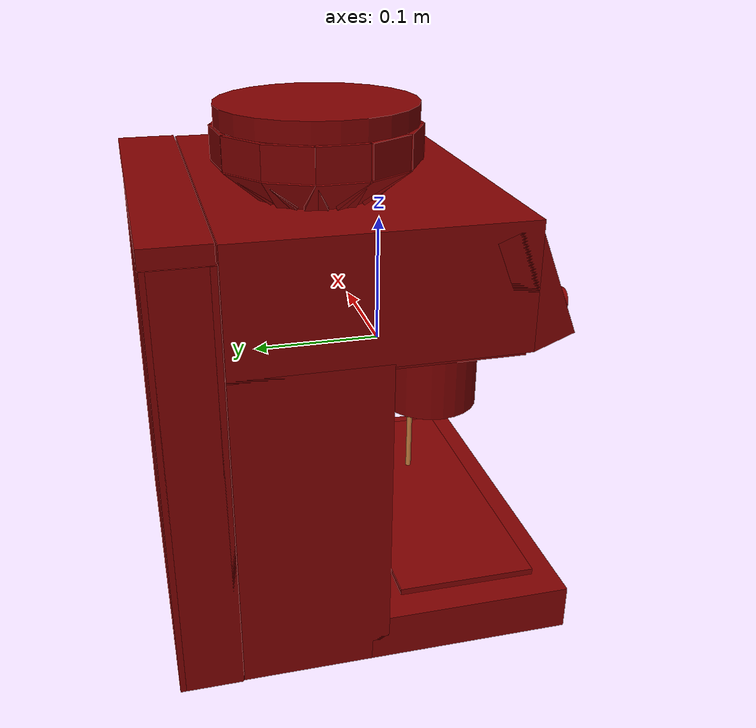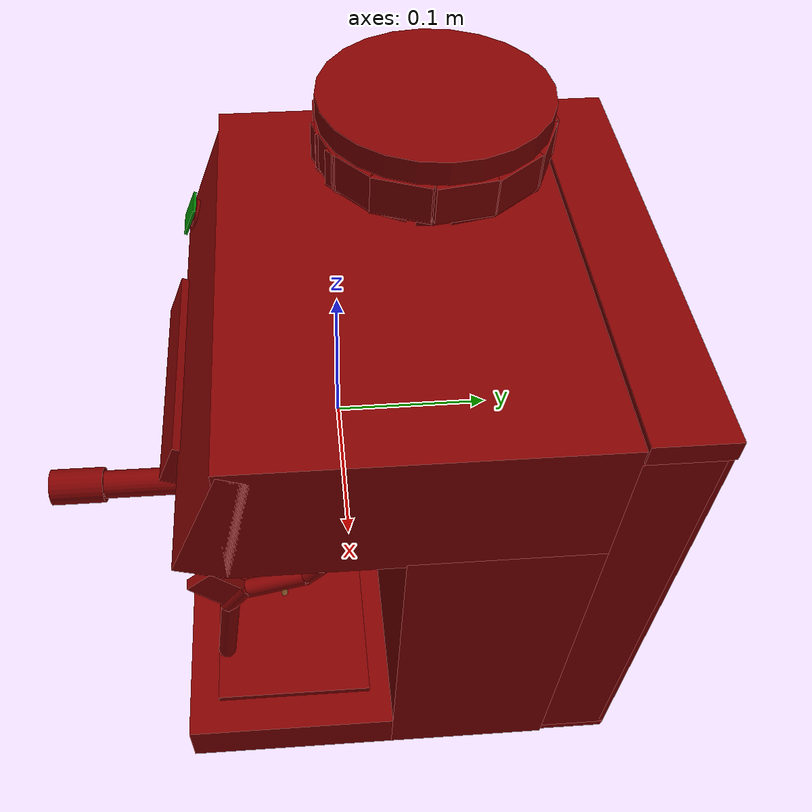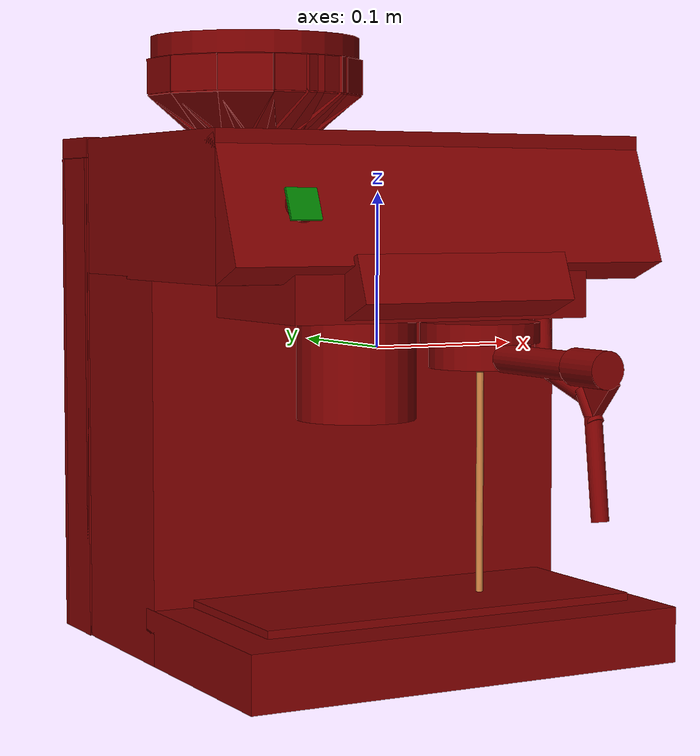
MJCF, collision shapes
<?xml version='1.0' encoding='UTF-8'?>
<mujoco model="model">
  <compiler angle="radian"/>
  <asset>
    <mesh file="visuals/Body001.obj" name="Body001_vis"/>
    <mesh file="visuals/Button001.obj" name="Button001_vis"/>
    <mesh file="visuals/Container001_Clear.obj" name="Container001_Clear_vis"/>
    <mesh file="visuals/Container002_Clear.obj" name="Container002_Clear_vis"/>
    <mesh file="visuals/Lever001.obj" name="Lever001_vis"/>
    <mesh file="visuals/Lever002.obj" name="Lever002_vis"/>
    <mesh file="visuals/Lid001.obj" name="Lid001_vis"/>
    <mesh file="visuals/Lid002.obj" name="Lid002_vis"/>
    <mesh file="visuals/Lid003.obj" name="Lid003_vis"/>
    <texture file="visuals/T_BC001.png" name="Body001_material" type="2d"/>
    <material name="Body001_material" rgba="1 1 1 1.0" texture="Body001_material" shininess="0.141421377658844" specular="0.3103448502657381"/>
    <texture file="visuals/T_BC001.png" name="Button001_material" type="2d"/>
    <material name="Button001_material" rgba="1 1 1 1.0" texture="Button001_material" shininess="0.141421377658844" specular="0.3103448502657381"/>
    <texture file="visuals/T_BC001.png" name="Container001_Clear_material" type="2d"/>
    <material name="Container001_Clear_material" rgba="1 1 1 0.15544039011001587" texture="Container001_Clear_material" shininess="0.141421377658844" specular="0.3103448502657381"/>
    <texture file="visuals/T_BC001.png" name="Lid003_material" type="2d"/>
    <material name="Lid003_material" rgba="1 1 1 1.0" texture="Lid003_material" shininess="0.141421377658844" specular="0.3103448502657381"/>
    <texture file="visuals/T_BC001.png" name="Container002_Clear_material" type="2d"/>
    <material name="Container002_Clear_material" rgba="1 1 1 0.15544039011001587" texture="Container002_Clear_material" shininess="0.141421377658844" specular="0.3103448502657381"/>
    <texture file="visuals/T_BC001.png" name="Lid002_material" type="2d"/>
    <material name="Lid002_material" rgba="1 1 1 1.0" texture="Lid002_material" shininess="0.141421377658844" specular="0.3103448502657381"/>
    <texture file="visuals/T_BC001.png" name="Lever001_material" type="2d"/>
    <material name="Lever001_material" rgba="1 1 1 1.0" texture="Lever001_material" shininess="0.141421377658844" specular="0.3103448502657381"/>
    <texture file="visuals/T_BC001.png" name="Lever002_material" type="2d"/>
    <material name="Lever002_material" rgba="1 1 1 1.0" texture="Lever002_material" shininess="0.141421377658844" specular="0.3103448502657381"/>
    <texture file="visuals/T_BC001.png" name="Lid001_material" type="2d"/>
    <material name="Lid001_material" rgba="1 1 1 1.0" texture="Lid001_material" shininess="0.141421377658844" specular="0.3103448502657381"/>
  </asset>
  <default>
    <default class="visual">
      <geom conaffinity="0" contype="0" group="1" type="mesh"/>
    </default>
    <default class="collision">
      <geom group="0" rgba="0.5 0 0 0.5"/>
    </default>
    <default class="spawn">
      <geom group="0" rgba="1 1 1 0.5" contype="0" conaffinity="0"/>
      <site group="0" rgba="1 1 1 0.5"/>
    </default>
    <default class="region">
      <geom group="1" conaffinity="0" contype="0" rgba="0 1 0 0"/>
    </default>
  </default>
  <worldbody>
    <body>
      <body name="object">
        <geom class="collision" type="box" pos="-0.09953698515892029 -0.09205584973096848 0.09219466149806976" size="0.010266819968819618 0.010266819968819618 0.0010093714809045196" quat="0.8337666988372803 0.5521169304847717 0.0 0.0" name="start_button" rgba="0.0 0.5 0 0.5"/>
        <site type="cylinder" rgba="0.8 0.5 0.25 1" size="0.002370622009038925 0.07503831386566162" pos="0.05007607862353325 -0.045918501913547516 -0.09016136080026627" name="coffee_liquid"/>
        <site rgba="0 0 0 0" size="0.009999999776482582 0.009999999776482582" pos="0.05007607862353325 -0.045918501913547516 -0.15159223973751068" name="receptacle_place_site"/>
        <geom mesh="Body001_vis" type="mesh" solimp="0.998 0.998 0.001" solref="0.001 1" density="100" friction="0.95 0.3 0.1" class="visual" material="Body001_material"/>
        <geom class="collision" type="box" pos="0.004251586273312569 0.034905076026916504 0.09054994583129883" size="0.15010659396648407 0.10419394820928574 0.046176742762327194" quat="1.0 0.0 0.0 0.0"/>
        <geom class="collision" type="box" pos="0.004251586273312569 0.08353205025196075 -0.07729153335094452" size="0.15010659396648407 0.055566973984241486 0.1236661747097969" quat="1.0 0.0 0.0 0.0"/>
        <geom class="collision" type="box" pos="0.004251586273312569 -0.037617094814777374 -0.18301598727703094" size="0.15010659396648407 0.07883471995592117 0.01794171705842018" quat="1.0 0.0 0.0 0.0"/>
        <geom class="collision" type="box" pos="0.004251586273312569 -0.0678786039352417 0.08943219482898712" size="0.15010659396648407 0.04236120730638504 0.015518431551754475" quat="0.8273626565933228 0.5616680979728699 0.0 0.0"/>
        <geom class="collision" type="box" pos="0.00463740061968565 -0.08949065953493118 0.04157225042581558" size="0.07325221598148346 0.01568031497299671 0.01794171892106533" quat="0.8273626565933228 0.5616680979728699 0.0 0.0"/>
        <geom class="collision" type="box" pos="0.0017035852652043104 -0.02856498211622238 0.03591998293995857" size="0.10334555804729462 0.056058935821056366 0.015401296317577362" quat="1.0 0.0 0.0 0.0"/>
        <geom class="collision" type="cylinder" pos="-0.033732231706380844 -0.03381001949310303 -0.010906064882874489" size="0.03773859143257141 0.03150390461087227" quat="1.0 0.0 0.0 0.0"/>
        <body name="Button001">
          <joint axis="0.0 0.9308611154556274 -0.36537331342697144" pos="-0.09953698515892029 -0.09081856161355972 0.09167009592056274" limited="true" name="Button001_joint" range="0.0 0.005" type="slide" damping="1" frictionloss="1" armature=".01" stiffness="0.2" springref="-0.1"/>
          <geom mesh="Button001_vis" type="mesh" solimp="0.998 0.998 0.001" solref="0.001 1" density="100" friction="0.95 0.3 0.1" class="visual" material="Button001_material"/>
          <geom class="collision" type="cylinder" pos="-0.09953698515892029 -0.08958203345537186 0.09114585071802139" size="0.010266819968819618 0.0010093714809045196" quat="0.8337666988372803 0.5521169304847717 0.0 0.0"/>
        </body>
        <body name="Container001_Clear">
          <joint axis="0.0 0.0 1.0" pos="0.003773098811507225 0.16324551403522491 -0.03832846134901047" limited="true" name="Container001_Clear_joint" range="0.0 0.1" type="slide" damping="1" frictionloss="1" armature=".01" stiffness="0.05"/>
          <geom mesh="Container001_Clear_vis" type="mesh" solimp="0.998 0.998 0.001" solref="0.001 1" density="100" friction="0.95 0.3 0.1" class="visual" material="Container001_Clear_material"/>
          <geom class="collision" type="box" pos="0.0032774843275547028 0.16226056218147278 -0.1977800577878952" size="0.1496579796075821 0.022839296609163284 0.003091417020186782" quat="1.0 0.0 0.0 0.0"/>
          <geom class="collision" type="box" pos="0.002547665499150753 0.18423816561698914 -0.03855401650071144" size="0.1493503749370575 0.0021811395417898893 0.16255491971969604" quat="1.0 0.0 0.0 0.0"/>
          <geom class="collision" type="box" pos="0.002547665499150753 0.14226122200489044 -0.03855401650071144" size="0.1493503749370575 0.0021811395417898893 0.16255491971969604" quat="1.0 0.0 0.0 0.0"/>
          <geom class="collision" type="box" pos="-0.14540432393550873 0.16110016405582428 -0.03855401277542114" size="0.0013983910903334618 0.021367941051721573 0.16255491971969604" quat="1.0 0.0 0.0 0.0"/>
          <geom class="collision" type="box" pos="0.15145157277584076 0.16110016405582428 -0.03855401277542114" size="0.0013983910903334618 0.021367941051721573 0.16255491971969604" quat="1.0 0.0 0.0 0.0"/>
          <body name="Lid003">
            <joint axis="0.0 0.0 1.0" pos="0.003773130476474762 0.16366788744926453 0.13069534301757812" limited="true" name="Lid003_joint" range="0.0 0.1" type="slide" damping="1" frictionloss="1" armature=".01" stiffness="0.05"/>
            <geom mesh="Lid003_vis" type="mesh" solimp="0.998 0.998 0.001" solref="0.001 1" density="100" friction="0.95 0.3 0.1" class="visual" material="Lid003_material"/>
            <geom class="collision" type="box" pos="0.0032774843275547028 0.16388192772865295 0.1311011165380478" size="0.1496579796075821 0.023143304511904716 0.006692893337458372" quat="1.0 0.0 0.0 0.0"/>
          </body>
        </body>
        <body name="Container002_Clear">
          <geom mesh="Container002_Clear_vis" type="mesh" solimp="0.998 0.998 0.001" solref="0.001 1" density="100" friction="0.95 0.3 0.1" class="visual" material="Container002_Clear_material"/>
          <geom class="collision" type="box" pos="-0.06037981063127518 -0.00711560994386673 0.1750819832086563" size="0.017435021698474884 0.0018557803705334663 0.011379191651940346" quat="1.0 0.0 0.0 0.0"/>
          <geom class="collision" type="box" pos="-0.06037980690598488 0.008043576963245869 0.15212053060531616" size="0.017435021698474884 0.0018557804869487882 0.019665980711579323" quat="0.8987211585044861 0.4385205805301666 0.0 0.0"/>
          <geom class="collision" type="box" pos="-0.09274667501449585 0.0019253119826316833 0.1750819832086563" size="0.017435021698474884 0.0018557803705334663 0.011379191651940346" quat="0.968171238899231 0.0 -0.0 -0.25028878450393677"/>
          <geom class="collision" type="box" pos="-0.08539984375238419 0.015185226686298847 0.15212053060531616" size="0.017435021698474884 0.0018557803705334663 0.019665978848934174" quat="0.8701158761978149 0.42456310987472534 -0.10975683480501175 -0.22493986785411835"/>
          <geom class="collision" type="box" pos="-0.10385355353355408 0.03360801935195923 0.15212053060531616" size="0.017435021698474884 0.0018557803705334663 0.019665978848934174" quat="0.7858774662017822 0.38345980644226074 -0.21274130046367645 -0.4360003173351288"/>
          <geom class="collision" type="box" pos="-0.11671523749828339 0.025584418326616287 0.1750819832086563" size="0.017435021698474884 0.0018557803705334663 0.011379191651940346" quat="0.8744396567344666 0.0 -0.0 -0.4851342439651489"/>
          <geom class="collision" type="box" pos="-0.12619364261627197 0.058469947427511215 0.1750819832086563" size="0.017435021698474884 0.0018557803705334663 0.011379191651940346" quat="0.7218979597091675 0.0 -0.0 -0.6919995546340942"/>
          <geom class="collision" type="box" pos="-0.11104800552129745 0.059110771864652634 0.15212053060531616" size="0.017435021698474884 0.0018557803705334663 0.019665978848934174" quat="0.6487849354743958 0.3165670931339264 -0.30345603823661804 -0.6219146251678467"/>
          <geom class="collision" type="box" pos="-0.1189955547451973 0.09028405696153641 0.1750819832086563" size="0.017435023561120033 0.0018557803705334663 0.011379191651940346" quat="0.5321621298789978 0.0 -0.0 -0.8466424942016602"/>
          <geom class="collision" type="box" pos="-0.10533557832241058 0.0837109237909317 0.15212053060531616" size="0.017435023561120033 0.0018557803705334663 0.019665978848934174" quat="0.4782653748989105 0.2333640456199646 -0.37127014994621277 -0.7608954906463623"/>
          <geom class="collision" type="box" pos="-0.08834408223628998 0.10296188294887543 0.15212053060531616" size="0.017435021698474884 0.0018557803705334663 0.019665980711579323" quat="0.27550870180130005 0.13443127274513245 -0.41740691661834717 -0.8554499745368958"/>
          <geom class="collision" type="box" pos="-0.09719087183475494 0.11527185142040253 0.1750819832086563" size="0.017435021698474884 0.0018557803705334663 0.011379191651940346" quat="0.30655637383461 0.0 -0.0 -0.9518525004386902"/>
          <geom class="collision" type="box" pos="0.007320038974285126 0.06992585957050323 0.1750819832086563" size="0.017435021698474884 0.0018557802541181445 0.011379191651940346" quat="0.6453961730003357 0.0 0.0 0.7638480067253113"/>
          <geom class="collision" type="box" pos="-0.007626452017575502 0.06739538162946701 0.15212053060531616" size="0.017435021698474884 0.0018557803705334663 0.019665978848934174" quat="0.5800312161445618 0.2830195128917694 0.3349630534648895 0.6864863634109497"/>
          <geom class="collision" type="box" pos="-0.017441436648368835 0.09112250804901123 0.15212053060531616" size="0.017435021698474884 0.0018557803705334663 0.019665980711579323" quat="0.39250025153160095 0.1915159523487091 0.39448946714401245 0.8084820508956909"/>
          <geom class="collision" type="box" pos="-0.005529932677745819 0.10049891471862793 0.1750819832086563" size="0.017435021698474884 0.0018557803705334663 0.011379191651940346" quat="0.4367319643497467 0.0 0.0 0.8995916843414307"/>
          <geom class="collision" type="box" pos="-0.03702148422598839 0.1070730984210968 0.15212053060531616" size="0.017435021698474884 0.0018557803705334663 0.019665980711579323" quat="0.1843346804380417 0.08994396775960922 0.42919737100601196 0.8796138167381287"/>
          <geom class="collision" type="box" pos="-0.030935153365135193 0.12095680832862854 0.1750819832086563" size="0.017435021698474884 0.0018557803705334663 0.011379191651940346" quat="0.20510774850845337 0.0 0.0 0.9787393808364868"/>
          <geom class="collision" type="box" pos="-0.06463778018951416 0.1269092857837677 0.1750819832086563" size="0.017435021698474884 0.0018557803705334663 0.011379191651940346" quat="0.0511426217854023 0.0 -0.0 -0.9986913800239563"/>
          <geom class="collision" type="box" pos="-0.06308925151824951 0.11182938516139984 0.15212053060531616" size="0.017435021698474884 0.0018557803705334663 0.019665980711579323" quat="0.04596295580267906 0.022427091374993324 -0.43794670701026917 -0.8975450396537781"/>
          <geom class="collision" type="box" pos="0.0033419467508792877 0.03529047966003418 0.1750819832086563" size="0.017435021698474884 0.0018557803705334663 0.011379191651940346" quat="0.8215954899787903 0.0 0.0 0.5700708627700806"/>
          <geom class="collision" type="box" pos="-0.010858201421797276 0.04059678316116333 0.15212053060531616" size="0.017435023561120033 0.0018557804869487882 0.019665980711579323" quat="0.7383853197097778 0.36028656363487244 0.24998779594898224 0.5123347043991089"/>
          <geom class="collision" type="box" pos="-0.0260324627161026 0.01988321542739868 0.15212053060531616" size="0.017435021698474884 0.0018557803705334663 0.019665978848934174" quat="0.8420522212982178 0.41086962819099426 0.15325286984443665 0.31408241391181946"/>
          <geom class="collision" type="box" pos="-0.01610499620437622 0.008426930755376816 0.1750819832086563" size="0.017435021698474884 0.0018557803705334663 0.011379191651940346" quat="0.9369449019432068 0.0 0.0 0.3494771122932434"/>
          <geom class="collision" type="box" pos="-0.038939040154218674 -0.0040366798639297485 0.1750819832086563" size="0.017435021698474884 0.0018557803705334663 0.011379191651940346" quat="0.9869014620780945 0.0 0.0 0.16132423281669617"/>
          <geom class="collision" type="box" pos="-0.04376605898141861 0.010333460755646229 0.15212053060531616" size="0.017435021698474884 0.0018557804869487882 0.019665978848934174" quat="0.8869492411613464 0.4327766001224518 0.07074397802352905 0.14498546719551086"/>
          <body name="Lid002">
            <joint axis="0.0 0.0 1.0" pos="-0.05907779559493065 0.06000583991408348 0.19072727859020233" limited="true" name="Lid002_joint" range="0.0 0.1" type="slide" damping="1" frictionloss="1" armature=".01" stiffness="0.05"/>
            <geom mesh="Lid002_vis" type="mesh" solimp="0.998 0.998 0.001" solref="0.001 1" density="100" friction="0.95 0.3 0.1" class="visual" material="Lid002_material"/>
            <geom class="collision" type="cylinder" pos="-0.05907779559493065 0.06000583991408348 0.1941232532262802" size="0.06853549182415009 0.007018524222075939" quat="1.0 0.0 0.0 0.0"/>
          </body>
        </body>
        <body name="Lever001">
          <joint axis="0.0 0.0 -1.0" pos="0.05020756274461746 -0.043985456228256226 0.022376716136932373" limited="true" name="Lever001_joint" range="0.0 1.0471975511965976" type="hinge" damping="1" frictionloss="1" armature=".01" stiffness="0.005"/>
          <geom mesh="Lever001_vis" type="mesh" solimp="0.998 0.998 0.001" solref="0.001 1" density="100" friction="0.95 0.3 0.1" class="visual" material="Lever001_material"/>
          <geom class="collision" type="cylinder" pos="0.05089174583554268 -0.04380524531006813 0.010718117468059063" size="0.038811095058918 0.006614522077143192" quat="1.0 0.0 0.0 0.0"/>
          <geom class="collision" type="cylinder" pos="0.05089174583554268 -0.04380524531006813 -0.0031957211904227734" size="0.032877806574106216 0.008945344015955925" quat="1.0 0.0 0.0 0.0"/>
          <geom class="collision" type="cylinder" pos="0.05028968304395676 -0.11444319039583206 -0.004454403184354305" size="0.009046882390975952 0.040013495832681656" quat="0.7071068286895752 -0.7071067690849304 -0.0 0.0"/>
          <geom class="collision" type="cylinder" pos="0.05028968304395676 -0.17021813988685608 -0.00445440411567688" size="0.011497272178530693 0.016860052943229675" quat="0.7071068286895752 -0.7071067690849304 -0.0 0.0"/>
        </body>
        <body name="Lever002">
          <joint axis="0.0 0.0 1.0" pos="0.11731132119894028 -0.011771619319915771 0.049101654440164566" limited="true" name="Lever002_joint" range="0.0 1.5707963267948966" type="hinge" damping="1" frictionloss="1" armature=".01" stiffness="0.005"/>
          <geom mesh="Lever002_vis" type="mesh" solimp="0.998 0.998 0.001" solref="0.001 1" density="100" friction="0.95 0.3 0.1" class="visual" material="Lever002_material"/>
          <geom class="collision" type="cylinder" pos="0.11736256629228592 -0.015233302488923073 0.01655789650976658" size="0.005837130825966597 0.02365570142865181" quat="0.9987954497337341 -0.04906829446554184 -0.0 0.0"/>
          <geom class="collision" type="cylinder" pos="0.11736256629228592 -0.02131441980600357 -0.012592257000505924" size="0.005837130825966597 0.010007442906498909" quat="0.9347220063209534 -0.3553798198699951 -0.0 0.0"/>
          <geom class="collision" type="cylinder" pos="0.11736256629228592 -0.04497971758246422 -0.024970028549432755" size="0.0058371322229504585 0.020111531019210815" quat="0.8053956031799316 -0.59273761510849 -0.0 0.0"/>
          <geom class="collision" type="cylinder" pos="0.11736256629228592 -0.07150457799434662 -0.037982307374477386" size="0.005837131291627884 0.012467369437217712" quat="0.9569002389907837 -0.2904168367385864 -0.0 0.0"/>
          <geom class="collision" type="cylinder" pos="0.11721059679985046 -0.08042599260807037 -0.07792060077190399" size="0.005837130825966597 0.03408563509583473" quat="0.9979275465011597 -0.06434770673513412 -0.0 0.0"/>
          <geom class="collision" type="box" pos="0.1172933280467987 -0.08265234529972076 -0.025484323501586914" size="0.0034983856603503227 0.014987933449447155 0.011212067678570747" quat="0.9185348749160767 -0.3953400254249573 -0.0 0.0"/>
        </body>
        <body name="Lid001">
          <joint axis="0.0 0.0 1.0" pos="0.0032636895775794983 -0.04068789631128311 -0.15955886244773865" limited="true" name="Lid001_joint" range="0.0 0.05" type="slide" damping="1" frictionloss="1" armature=".01" stiffness="0.05"/>
          <geom mesh="Lid001_vis" type="mesh" solimp="0.998 0.998 0.001" solref="0.001 1" density="100" friction="0.95 0.3 0.1" class="visual" material="Lid001_material"/>
          <geom class="collision" type="box" pos="0.003273582085967064 -0.04110733047127724 -0.15969455242156982" size="0.12849262356758118 0.054163858294487 0.002483558375388384" quat="1.0 0.0 0.0 0.0"/>
        </body>
        <geom class="region" name="reg_main" type="box" pos="0.0 0.03582325577735901 0.0" size="0.15284475684165955 0.15095151960849762 0.20082902908325195"/>
      </body>
    </body>
  </worldbody>
  <actuator>
    <motor name="Button001_joint_actuator" joint="Button001_joint" gear="0.5"/>
    <motor name="Container001_Clear_joint_actuator" joint="Container001_Clear_joint" gear="50"/>
    <motor name="Lever001_joint_actuator" joint="Lever001_joint" gear="10"/>
    <motor name="Lever002_joint_actuator" joint="Lever002_joint" gear="10"/>
    <motor name="Lid001_joint_actuator" joint="Lid001_joint" gear="10"/>
    <motor name="Lid003_joint_actuator" joint="Lid003_joint" gear="10"/>
    <motor name="Lid002_joint_actuator" joint="Lid002_joint" gear="10"/>
  </actuator>
</mujoco>
